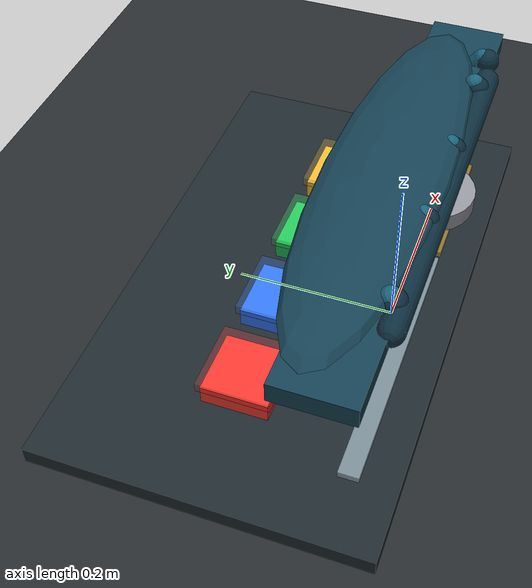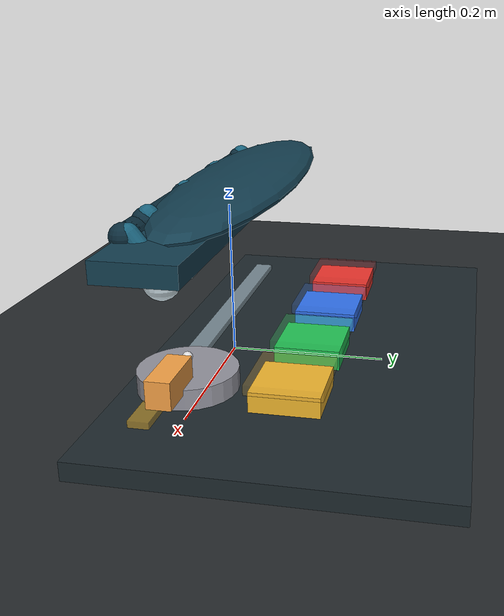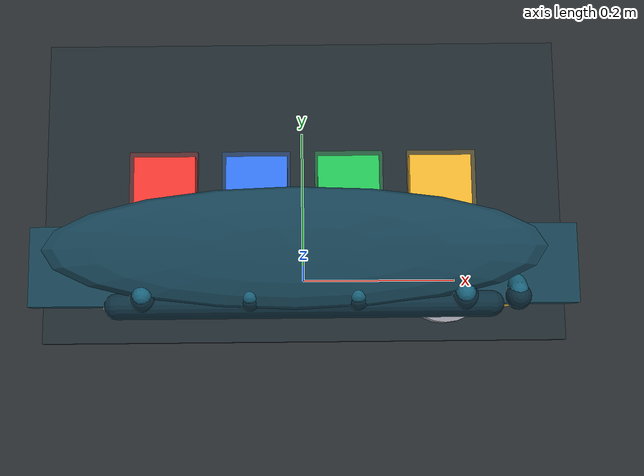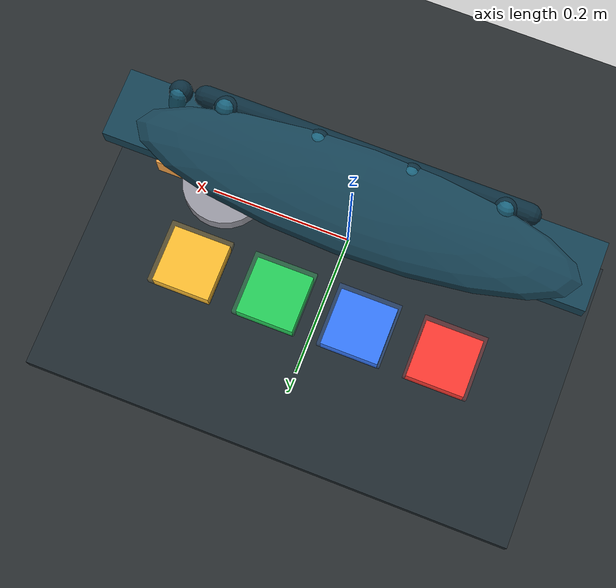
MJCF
<mujoco model="dexterous_data_bench">
  <compiler angle="radian" autolimits="true"/>
  <option timestep="0.002" gravity="0 0 -9.81" integrator="RK4" cone="elliptic"/>
  <size njmax="600" nconmax="120"/>
  <visual>
    <global offwidth="960" offheight="544"/>
  </visual>

  <default>
    <geom friction="1.8 0.08 0.004" solref="0.004 1" solimp="0.95 0.99 0.001"/>
    <joint damping="0.7" armature="0.01"/>
    <position kp="80" kv="6"/>
  </default>

  <asset>
    <texture name="grid" type="2d" builtin="checker" width="256" height="256"
             rgb1="0.13 0.14 0.15" rgb2="0.18 0.20 0.21"/>
    <material name="floor_mat" texture="grid" texrepeat="4 4" reflectance="0.18"/>
    <material name="board_mat" rgba="0.12 0.16 0.18 1"/>
    <material name="palm_mat" rgba="0.08 0.25 0.32 1"/>
    <material name="phalanx_mat" rgba="0.10 0.38 0.48 1"/>
    <material name="joint_mat" rgba="0.05 0.18 0.24 1"/>
    <material name="tip_mat" rgba="0.85 0.92 0.95 1"/>
    <material name="nail_mat" rgba="0.95 0.98 1.00 1"/>
    <material name="button_red" rgba="0.95 0.22 0.18 1"/>
    <material name="button_blue" rgba="0.20 0.46 0.95 1"/>
    <material name="button_green" rgba="0.12 0.72 0.32 1"/>
    <material name="button_gold" rgba="0.95 0.72 0.18 1"/>
    <material name="dial_mat" rgba="0.58 0.58 0.62 1"/>
    <material name="handle_mat" rgba="0.97 0.64 0.28 1"/>
  </asset>

  <worldbody>
    <light name="key" pos="0 -0.55 0.9" dir="0 0.7 -1" diffuse="0.9 0.9 0.85"/>
    <light name="fill" pos="-0.5 0.45 0.55" dir="0.5 -0.4 -1" diffuse="0.25 0.32 0.35"/>
    <camera name="overview" pos="0 -0.68 0.48" xyaxes="1 0 0 0 0.58 0.82"/>
    <camera name="topdown" pos="0.02 0.09 0.72" xyaxes="1 0 0 0 1 0"/>

    <geom name="floor" type="plane" size="1.0 1.0 0.02" material="floor_mat"/>

    <body name="task_board" pos="0 0.12 0.011">
      <geom name="board" type="box" size="0.34 0.20 0.011" material="board_mat"/>
      <geom name="sequence_slot" type="box" pos="-0.09 -0.145 0.018"
            size="0.17 0.012 0.004" rgba="0.8 0.9 0.95 0.55" contype="0" conaffinity="0"/>
      <geom name="dial_slot" type="box" pos="0.18 -0.145 0.018"
            size="0.09 0.012 0.004" rgba="0.95 0.72 0.18 0.55" contype="0" conaffinity="0"/>
    </body>

    <body name="button_a" pos="-0.18 0.12 0.040">
      <joint name="button_a_slide" type="slide" axis="0 0 -1" range="0 0.026"
             stiffness="45" springref="0" damping="2.0"/>
      <geom name="button_a_cap" type="box" size="0.040 0.040 0.012" material="button_red" mass="0.035"/>
      <site name="button_a_touch_site" type="box" pos="0 0 0.016" size="0.044 0.044 0.006" rgba="1 0.25 0.25 0.25"/>
    </body>

    <body name="button_b" pos="-0.06 0.12 0.040">
      <joint name="button_b_slide" type="slide" axis="0 0 -1" range="0 0.026"
             stiffness="45" springref="0" damping="2.0"/>
      <geom name="button_b_cap" type="box" size="0.040 0.040 0.012" material="button_blue" mass="0.035"/>
      <site name="button_b_touch_site" type="box" pos="0 0 0.016" size="0.044 0.044 0.006" rgba="0.25 0.5 1 0.25"/>
    </body>

    <body name="button_c" pos="0.06 0.12 0.040">
      <joint name="button_c_slide" type="slide" axis="0 0 -1" range="0 0.026"
             stiffness="45" springref="0" damping="2.0"/>
      <geom name="button_c_cap" type="box" size="0.040 0.040 0.012" material="button_green" mass="0.035"/>
      <site name="button_c_touch_site" type="box" pos="0 0 0.016" size="0.044 0.044 0.006" rgba="0.25 1 0.45 0.25"/>
    </body>

    <body name="button_d" pos="0.18 0.12 0.040">
      <joint name="button_d_slide" type="slide" axis="0 0 -1" range="0 0.026"
             stiffness="45" springref="0" damping="2.0"/>
      <geom name="button_d_cap" type="box" size="0.040 0.040 0.012" material="button_gold" mass="0.035"/>
      <site name="button_d_touch_site" type="box" pos="0 0 0.016" size="0.044 0.044 0.006" rgba="1 0.75 0.25 0.25"/>
    </body>

    <body name="dial" pos="0.18 0.00 0.044">
      <joint name="dial_hinge" type="hinge" axis="0 0 1" range="-1.4 1.4"
             damping="0.012" armature="0.001" frictionloss="0.001"/>
      <geom name="dial_disc" type="cylinder" size="0.058 0.012" material="dial_mat" mass="0.040"/>
      <body name="dial_handle" pos="0.058 0 0.022">
        <geom name="dial_handle_geom" type="box" size="0.034 0.014 0.016" material="handle_mat" mass="0.012"/>
      </body>
      <site name="dial_center_site" pos="0 0 0.025" size="0.006" rgba="1 1 1 0.8"/>
    </body>

    <body name="palm" pos="0 0 0.18">
      <geom name="palm_plate" type="box" pos="0 0 0.030" size="0.31 0.045 0.012" material="palm_mat" contype="0" conaffinity="0"/>
      <geom name="palm_soft_pad" type="ellipsoid" pos="-0.010 0.018 0.050" size="0.285 0.070 0.020" material="palm_mat" contype="0" conaffinity="0"/>
      <geom name="wrist_mount" type="capsule" fromto="-0.210 -0.045 0.038 0.210 -0.045 0.038" size="0.015" material="joint_mat" contype="0" conaffinity="0"/>

      <body name="thumb_carriage_x" pos="-0.18 0 0">
        <inertial pos="0 0 0" mass="0.005" diaginertia="0.00001 0.00001 0.00001"/>
        <joint name="thumb_x" type="slide" axis="1 0 0" range="-0.075 0.075"/>
        <body name="thumb_carriage_y">
          <inertial pos="0 0 0" mass="0.005" diaginertia="0.00001 0.00001 0.00001"/>
          <joint name="thumb_y" type="slide" axis="0 1 0" range="-0.02 0.22"/>
          <geom name="thumb_knuckle" type="sphere" pos="0 -0.038 0.045" size="0.016" material="joint_mat" contype="0" conaffinity="0"/>
          <geom name="thumb_proximal_phalanx" type="capsule" fromto="0 -0.036 0.044 0 -0.008 0.016" size="0.011" material="phalanx_mat" contype="0" conaffinity="0"/>
          <body name="thumb_tip_body">
            <joint name="thumb_z" type="slide" axis="0 0 1" range="-0.155 0.020"/>
            <geom name="thumb_distal_phalanx" type="capsule" fromto="0 -0.035 0.052 0 -0.006 0.016" size="0.012" material="phalanx_mat" contype="0" conaffinity="0"/>
            <geom name="thumb_tip" type="sphere" size="0.020" material="tip_mat" mass="0.035"/>
            <geom name="thumb_nail" type="box" pos="0 0.012 0.016" size="0.010 0.004 0.006" material="nail_mat" contype="0" conaffinity="0"/>
            <site name="thumb_tip_site" type="sphere" size="0.010" rgba="0.95 0.95 1 0.55"/>
          </body>
        </body>
      </body>

      <body name="index_carriage_x" pos="-0.06 0 0">
        <inertial pos="0 0 0" mass="0.005" diaginertia="0.00001 0.00001 0.00001"/>
        <joint name="index_x" type="slide" axis="1 0 0" range="-0.075 0.075"/>
        <body name="index_carriage_y">
          <inertial pos="0 0 0" mass="0.005" diaginertia="0.00001 0.00001 0.00001"/>
          <joint name="index_y" type="slide" axis="0 1 0" range="-0.02 0.22"/>
          <geom name="index_knuckle" type="sphere" pos="0 -0.038 0.045" size="0.016" material="joint_mat" contype="0" conaffinity="0"/>
          <geom name="index_proximal_phalanx" type="capsule" fromto="0 -0.036 0.044 0 -0.008 0.016" size="0.011" material="phalanx_mat" contype="0" conaffinity="0"/>
          <body name="index_tip_body">
            <joint name="index_z" type="slide" axis="0 0 1" range="-0.155 0.020"/>
            <geom name="index_distal_phalanx" type="capsule" fromto="0 -0.035 0.052 0 -0.006 0.016" size="0.012" material="phalanx_mat" contype="0" conaffinity="0"/>
            <geom name="index_tip" type="sphere" size="0.020" material="tip_mat" mass="0.035"/>
            <geom name="index_nail" type="box" pos="0 0.012 0.016" size="0.010 0.004 0.006" material="nail_mat" contype="0" conaffinity="0"/>
            <site name="index_tip_site" type="sphere" size="0.010" rgba="0.95 0.95 1 0.55"/>
          </body>
        </body>
      </body>

      <body name="middle_carriage_x" pos="0.06 0 0">
        <inertial pos="0 0 0" mass="0.005" diaginertia="0.00001 0.00001 0.00001"/>
        <joint name="middle_x" type="slide" axis="1 0 0" range="-0.075 0.075"/>
        <body name="middle_carriage_y">
          <inertial pos="0 0 0" mass="0.005" diaginertia="0.00001 0.00001 0.00001"/>
          <joint name="middle_y" type="slide" axis="0 1 0" range="-0.02 0.22"/>
          <geom name="middle_knuckle" type="sphere" pos="0 -0.038 0.045" size="0.016" material="joint_mat" contype="0" conaffinity="0"/>
          <geom name="middle_proximal_phalanx" type="capsule" fromto="0 -0.036 0.044 0 -0.008 0.016" size="0.011" material="phalanx_mat" contype="0" conaffinity="0"/>
          <body name="middle_tip_body">
            <joint name="middle_z" type="slide" axis="0 0 1" range="-0.155 0.020"/>
            <geom name="middle_distal_phalanx" type="capsule" fromto="0 -0.035 0.052 0 -0.006 0.016" size="0.012" material="phalanx_mat" contype="0" conaffinity="0"/>
            <geom name="middle_tip" type="sphere" size="0.020" material="tip_mat" mass="0.035"/>
            <geom name="middle_nail" type="box" pos="0 0.012 0.016" size="0.010 0.004 0.006" material="nail_mat" contype="0" conaffinity="0"/>
            <site name="middle_tip_site" type="sphere" size="0.010" rgba="0.95 0.95 1 0.55"/>
          </body>
        </body>
      </body>

      <body name="ring_carriage_x" pos="0.18 0 0">
        <inertial pos="0 0 0" mass="0.005" diaginertia="0.00001 0.00001 0.00001"/>
        <joint name="ring_x" type="slide" axis="1 0 0" range="-0.075 0.075"/>
        <body name="ring_carriage_y">
          <inertial pos="0 0 0" mass="0.005" diaginertia="0.00001 0.00001 0.00001"/>
          <joint name="ring_y" type="slide" axis="0 1 0" range="-0.02 0.22"/>
          <geom name="ring_knuckle" type="sphere" pos="0 -0.038 0.045" size="0.016" material="joint_mat" contype="0" conaffinity="0"/>
          <geom name="ring_proximal_phalanx" type="capsule" fromto="0 -0.036 0.044 0 -0.008 0.016" size="0.011" material="phalanx_mat" contype="0" conaffinity="0"/>
          <body name="ring_tip_body">
            <joint name="ring_z" type="slide" axis="0 0 1" range="-0.155 0.020"/>
            <geom name="ring_distal_phalanx" type="capsule" fromto="0 -0.035 0.052 0 -0.006 0.016" size="0.012" material="phalanx_mat" contype="0" conaffinity="0"/>
            <geom name="ring_tip" type="sphere" size="0.020" material="tip_mat" mass="0.035"/>
            <geom name="ring_nail" type="box" pos="0 0.012 0.016" size="0.010 0.004 0.006" material="nail_mat" contype="0" conaffinity="0"/>
            <site name="ring_tip_site" type="sphere" size="0.010" rgba="0.95 0.95 1 0.55"/>
          </body>
        </body>
      </body>

      <body name="pinky_carriage_x" pos="0.24 0 0">
        <inertial pos="0 0 0" mass="0.005" diaginertia="0.00001 0.00001 0.00001"/>
        <joint name="pinky_x" type="slide" axis="1 0 0" range="-0.075 0.075"/>
        <body name="pinky_carriage_y">
          <inertial pos="0 0 0" mass="0.005" diaginertia="0.00001 0.00001 0.00001"/>
          <joint name="pinky_y" type="slide" axis="0 1 0" range="-0.02 0.22"/>
          <geom name="pinky_knuckle" type="sphere" pos="0 -0.038 0.045" size="0.015" material="joint_mat" contype="0" conaffinity="0"/>
          <geom name="pinky_proximal_phalanx" type="capsule" fromto="0 -0.036 0.044 0 -0.008 0.016" size="0.010" material="phalanx_mat" contype="0" conaffinity="0"/>
          <body name="pinky_tip_body">
            <joint name="pinky_z" type="slide" axis="0 0 1" range="-0.155 0.020"/>
            <geom name="pinky_distal_phalanx" type="capsule" fromto="0 -0.032 0.049 0 -0.006 0.015" size="0.011" material="phalanx_mat" contype="0" conaffinity="0"/>
            <geom name="pinky_tip" type="sphere" size="0.020" material="tip_mat" mass="0.035"/>
            <geom name="pinky_nail" type="box" pos="0 0.012 0.015" size="0.009 0.004 0.005" material="nail_mat" contype="0" conaffinity="0"/>
            <site name="pinky_tip_site" type="sphere" size="0.010" rgba="0.95 0.95 1 0.55"/>
          </body>
        </body>
      </body>
    </body>
  </worldbody>

  <actuator>
    <position name="thumb_x_act" joint="thumb_x" ctrlrange="-0.075 0.075"/>
    <position name="thumb_y_act" joint="thumb_y" ctrlrange="-0.020 0.220"/>
    <position name="thumb_z_act" joint="thumb_z" ctrlrange="-0.155 0.020"/>
    <position name="index_x_act" joint="index_x" ctrlrange="-0.075 0.075"/>
    <position name="index_y_act" joint="index_y" ctrlrange="-0.020 0.220"/>
    <position name="index_z_act" joint="index_z" ctrlrange="-0.155 0.020"/>
    <position name="middle_x_act" joint="middle_x" ctrlrange="-0.075 0.075"/>
    <position name="middle_y_act" joint="middle_y" ctrlrange="-0.020 0.220"/>
    <position name="middle_z_act" joint="middle_z" ctrlrange="-0.155 0.020"/>
    <position name="ring_x_act" joint="ring_x" ctrlrange="-0.075 0.075"/>
    <position name="ring_y_act" joint="ring_y" ctrlrange="-0.020 0.220"/>
    <position name="ring_z_act" joint="ring_z" ctrlrange="-0.155 0.020"/>
    <position name="pinky_x_act" joint="pinky_x" ctrlrange="-0.075 0.075"/>
    <position name="pinky_y_act" joint="pinky_y" ctrlrange="-0.020 0.220"/>
    <position name="pinky_z_act" joint="pinky_z" ctrlrange="-0.155 0.020"/>
  </actuator>

  <sensor>
    <jointpos name="button_a_depth" joint="button_a_slide"/>
    <jointpos name="button_b_depth" joint="button_b_slide"/>
    <jointpos name="button_c_depth" joint="button_c_slide"/>
    <jointpos name="button_d_depth" joint="button_d_slide"/>
    <jointpos name="dial_angle" joint="dial_hinge"/>
    <touch name="button_a_touch" site="button_a_touch_site"/>
    <touch name="button_b_touch" site="button_b_touch_site"/>
    <touch name="button_c_touch" site="button_c_touch_site"/>
    <touch name="button_d_touch" site="button_d_touch_site"/>
    <framepos name="thumb_tip_pos" objtype="site" objname="thumb_tip_site"/>
    <framepos name="index_tip_pos" objtype="site" objname="index_tip_site"/>
    <framepos name="middle_tip_pos" objtype="site" objname="middle_tip_site"/>
    <framepos name="ring_tip_pos" objtype="site" objname="ring_tip_site"/>
    <framepos name="pinky_tip_pos" objtype="site" objname="pinky_tip_site"/>
  </sensor>
</mujoco>
